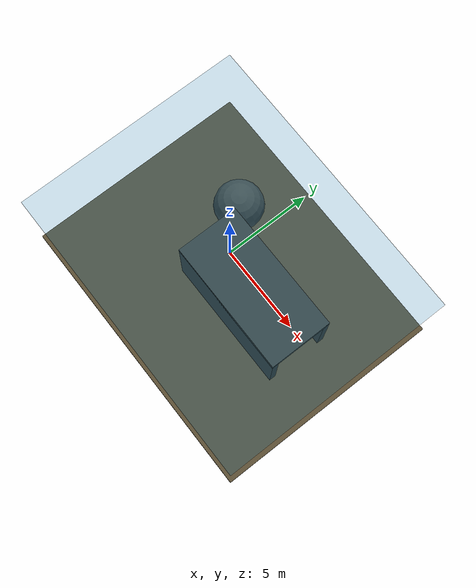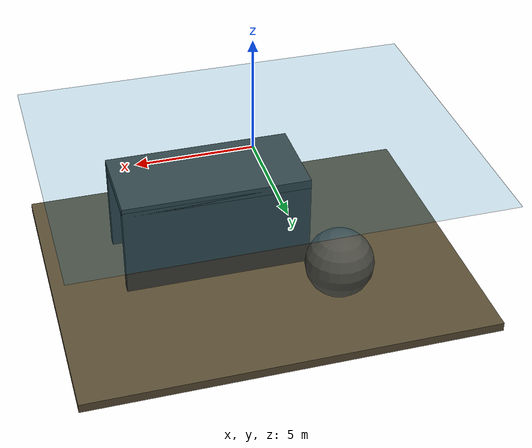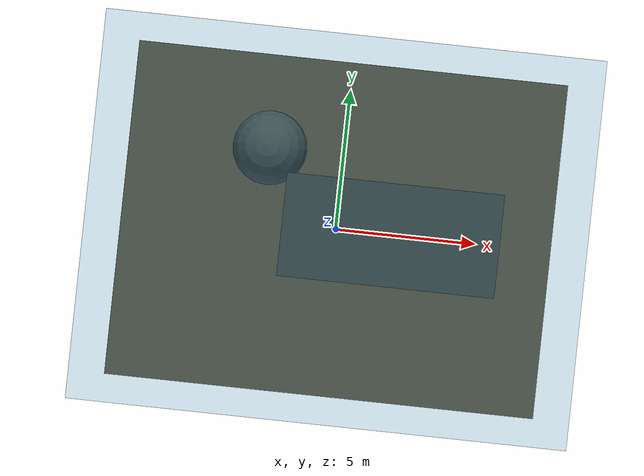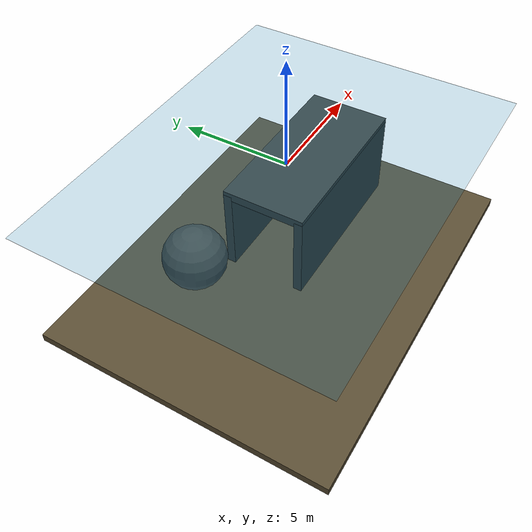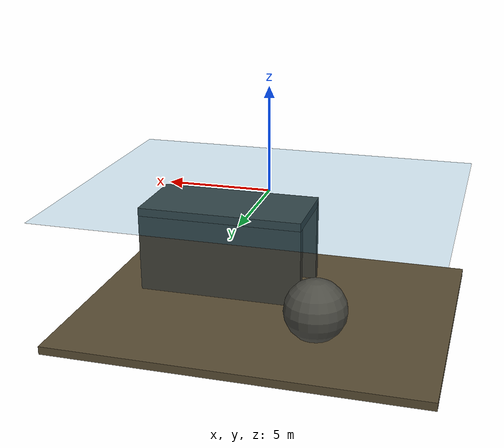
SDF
<?xml version='1.0' encoding='utf-8'?>
<sdf version="1.7">
  <world name="marine_cave">
    <physics name="marine_physics" type="ode">
      <max_step_size>0.001</max_step_size>
      <real_time_factor>1</real_time_factor>
    </physics>
    <gravity>0 0 -9.81</gravity>
    <plugin filename="ignition-gazebo-physics-system" name="ignition::gazebo::systems::Physics" />
    <plugin filename="ignition-gazebo-user-commands-system" name="ignition::gazebo::systems::UserCommands" />
    <plugin filename="ignition-gazebo-scene-broadcaster-system" name="ignition::gazebo::systems::SceneBroadcaster" />
    <plugin filename="ignition-gazebo-sensors-system" name="ignition::gazebo::systems::Sensors">
      <render_engine>ogre2</render_engine>
    </plugin>
    <plugin filename="ignition-gazebo-imu-system" name="ignition::gazebo::systems::Imu" />
    <plugin filename="ignition-gazebo-buoyancy-system" name="ignition::gazebo::systems::Buoyancy">
      <graded_buoyancy>
        <default_density>1025</default_density>
        <density_change>
          <above_depth>0</above_depth>
          <density>1.225</density>
        </density_change>
      </graded_buoyancy>
      <enable>lab_rov</enable>
    </plugin>
    <!-- Fortress uses the explicit marine_sensors.py DVL/pressure/sonar model. -->
    <scene>
      <ambient>.3 .55 .6 1</ambient>
      <background>.05 .18 .25 1</background>
    </scene>
    <light name="sun" type="directional">
      <pose>0 0 10 0 0 0</pose>
      <diffuse>.8 .9 1 1</diffuse>
      <direction>-.3 .2 -1</direction>
    </light>
    <model name="seafloor">
      <static>true</static>
      <pose>0 0 -6.2 0 0 0</pose>
      <link name="link">
        <visual name="visual">
          <geometry>
            <box>
              <size>18 14 0.4</size>
            </box>
          </geometry>
          <material>
            <ambient>.35 .3 .2 1</ambient>
            <diffuse>.35 .3 .2 1</diffuse>
          </material>
        </visual>
        <collision name="collision">
          <geometry>
            <box>
              <size>18 14 0.4</size>
            </box>
          </geometry>
        </collision>
      </link>
    </model>
    <model name="water_surface">
      <static>true</static>
      <pose>0 0 0 0 0 0</pose>
      <link name="link">
        <visual name="visual">
          <geometry>
            <box>
              <size>18 14 0.015</size>
            </box>
          </geometry>
          <material>
            <ambient>0 .4 .6 .18</ambient>
            <diffuse>0 .4 .6 .18</diffuse>
          </material>
        </visual>
      </link>
    </model>
    <model name="tunnel_0">
      <static>true</static>
      <pose>2 -1.7 -3 0 0 0</pose>
      <link name="link">
        <visual name="visual">
          <geometry>
            <box>
              <size>8 0.4 4</size>
            </box>
          </geometry>
          <material>
            <ambient>.25 .25 .22 1</ambient>
            <diffuse>.25 .25 .22 1</diffuse>
          </material>
        </visual>
        <collision name="collision">
          <geometry>
            <box>
              <size>8 0.4 4</size>
            </box>
          </geometry>
        </collision>
      </link>
    </model>
    <model name="tunnel_1">
      <static>true</static>
      <pose>2 1.7 -3 0 0 0</pose>
      <link name="link">
        <visual name="visual">
          <geometry>
            <box>
              <size>8 0.4 4</size>
            </box>
          </geometry>
          <material>
            <ambient>.25 .25 .22 1</ambient>
            <diffuse>.25 .25 .22 1</diffuse>
          </material>
        </visual>
        <collision name="collision">
          <geometry>
            <box>
              <size>8 0.4 4</size>
            </box>
          </geometry>
        </collision>
      </link>
    </model>
    <model name="tunnel_2">
      <static>true</static>
      <pose>2 0 -1 0 0 0</pose>
      <link name="link">
        <visual name="visual">
          <geometry>
            <box>
              <size>8 3.8 0.4</size>
            </box>
          </geometry>
          <material>
            <ambient>.25 .25 .22 1</ambient>
            <diffuse>.25 .25 .22 1</diffuse>
          </material>
        </visual>
        <collision name="collision">
          <geometry>
            <box>
              <size>8 3.8 0.4</size>
            </box>
          </geometry>
        </collision>
      </link>
    </model>
    <model name="cave_boulder">
      <static>true</static>
      <pose>-3 3 -4.5 0 0 0</pose>
      <link name="link">
        <visual name="visual">
          <geometry>
            <sphere>
              <radius>1.5</radius>
            </sphere>
          </geometry>
          <material>
            <ambient>.3 .3 .27 1</ambient>
            <diffuse>.3 .3 .27 1</diffuse>
          </material>
        </visual>
        <collision name="collision">
          <geometry>
            <sphere>
              <radius>1.5</radius>
            </sphere>
          </geometry>
        </collision>
      </link>
    </model>
  </world>
</sdf>
